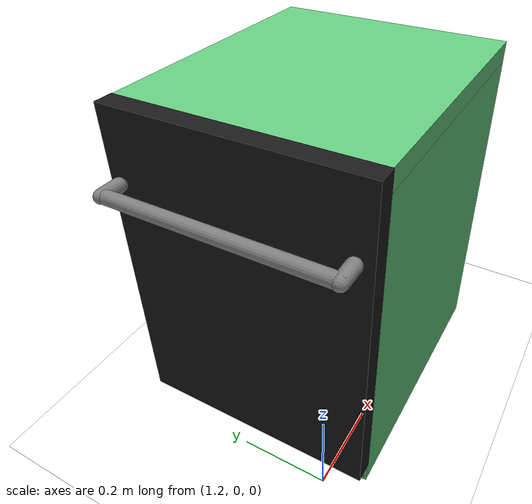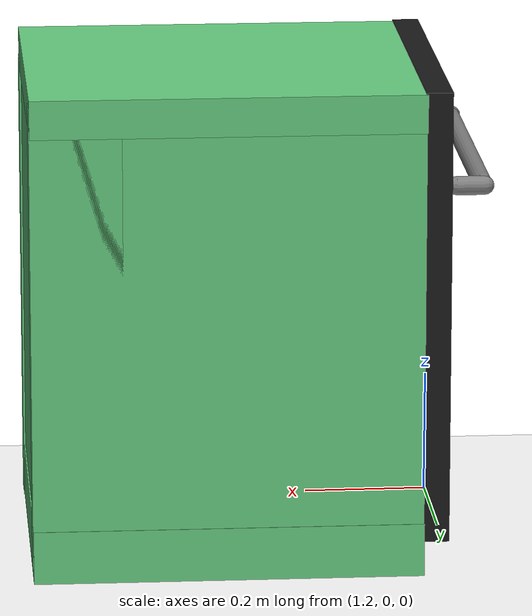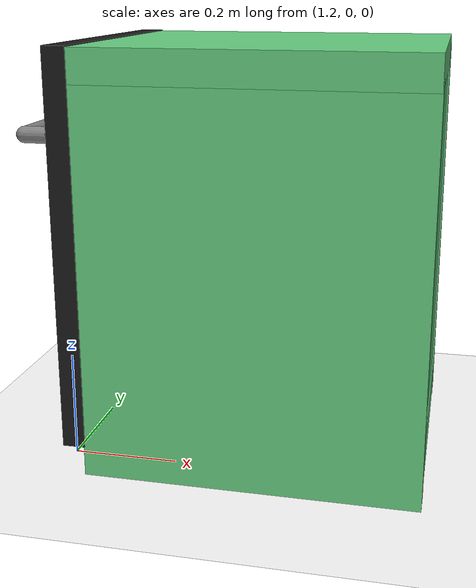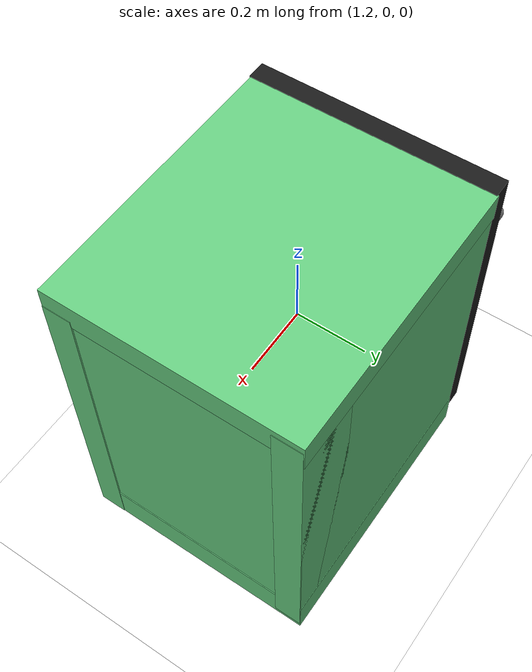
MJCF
<mujoco model="iai_door">
  <!-- inertiafromgeom="true"  -->
  <compiler angle="radian" meshdir="assets" autolimits="true"  balanceinertia="true" />
  <option solver="Newton" integrator="RK4" >
    <flag contact="enable" multiccd="enable"/>
    <!-- energy="disable"  -->
  </option>

  <asset>
    <texture builtin="checker" height="512" name="texplane" rgb1=".2 .3 .4" rgb2=".1 .15 .2" type="2d" width="512" />
    <material name="MatPlane" reflectance="0.05" shininess="0.01" specular="0.01" texrepeat="1 1" texture="texplane" texuniform="true" />
  </asset>

    <default>
   <!-- Test the contact class solimp - harder contact setting friction="2 0.05 0.01" -->
        <default class="contact">
          <geom contype="3" condim="4" solimp="0.95 0.95 0.01" solref="0.01 1" />
        </default>
        <default class="viz_dishwasher" >
            <geom group="1"  contype="0" conaffinity="0"/>
        </default>
        <default class="col">
            <geom rgba=".4 .8 .5 1" group="2" contype="1" conaffinity="0"/>
        </default>
    </default>
    <worldbody>
      <light pos="0 0 1000" castshadow="false" />
      <geom name="ground_plane" type="plane" material="MatPlane" size="5 5 10" rgba="1 1 1 1"/>
    </worldbody>
    <worldbody>
        <body name="sink_area_dish_washer_main" pos="1.555 0.2 0.4" quat="0 0 0 1" childclass="viz_dishwasher">
            <geom name="dish_top" type="box" pos="-0.003 0.011 .352" size=".310 .27 .031" class="col"/>
            <geom name="dish_bottom" type="box" pos="-0.003 0.009 -.37" size=".310 .267 .055" class="col"/>
            <geom name="dish_back" type="box" pos="-0.24 0.01 -0.038" size=".0710 .267 .378" class="col"/>
            <geom name="dish_right" type="box" pos="-0.004 -.226 -0.01" size=".310 .031 .378" class="col"/>
            <geom name="dish_left" type="box" pos="-0.004 0.25 -0.04" size=".310 .031 .378" class="col"/>

           <body name="sink_area_dish_washer_door"  pos="0.312 0 -0.35" quat="0.7071 -0.707107 0 0">
                <inertial pos="0 0 0" mass="2" diaginertia="1 1 1"/>
                <geom type="box" size=".0210 .365 .270"  pos="0.013 -0.37 0.013" rgba=".1 .1 .1 1" class="col" />
                <joint name="sink_area_dish_washer_door_joint" type="hinge" axis="0 0 1" range="0 1.57" limited="true" damping="0.1" frictionloss="0.01" stiffness="0.05"/>
                <body name="sink_area_dish_washer_door_handle" pos="0.085 -0.58 0.01" quat="0.707107 -0.707107 0 0" >
                    <inertial pos="0 0 0" mass="0.01" diaginertia="1 1 1"/>
                    <geom type="capsule" size="0.015 0.23" quat="0.7071 0.7071 0 0" class="contact"/>
                    <geom type="capsule" size=".015 .022" pos="-0.02 -0.24 0" quat="0.7071 0 0.7071 0" rgba=".50 .50 .50 1" class="col" />
                    <geom type="capsule" size=".015 .022" pos="-0.02 0.24 0" quat="0.7071 0 0.7071 0" rgba=".50 .50 .50 1" class="col" />
                </body>
            </body>
        </body>

    </worldbody>
</mujoco>
